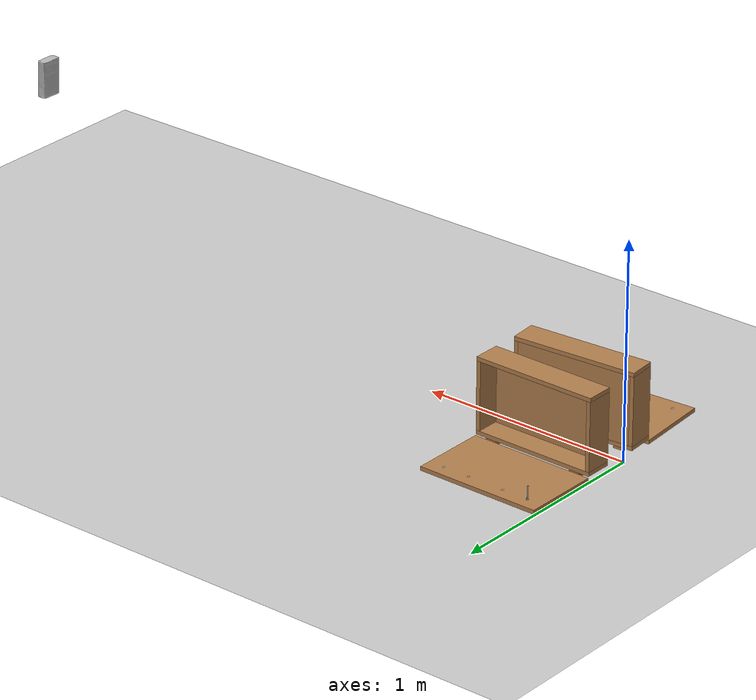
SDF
<sdf version="1.6">
 <world name="default">
  <model name="ground_plane">
   <static>1</static>
   <link name="link">
    <collision name="collision">
     <geometry><plane><normal>0 0 1</normal><size>100 100</size></plane></geometry>
     <surface><friction><ode><mu>100</mu><mu2>50</mu2></ode></friction></surface>
    </collision>
    <visual name="visual">
     <cast_shadows>0</cast_shadows>
     <geometry><plane><normal>0 0 1</normal><size>100 100</size></plane></geometry>
     <material>
      <script><uri>file://media/materials/scripts/gazebo.material</uri><name>Gazebo/Grey</name></script>
     </material>
    </visual>
   </link>
  </model>
  <light name="sun" type="directional">
   <pose>0 0 10 0 -0 0</pose>
   <diffuse>0.8 0.8 0.8 1</diffuse>
   <specular>0.1 0.1 0.1 1</specular>
   <attenuation>
    <range>1000</range>
    <constant>0.9</constant>
    <linear>0.01</linear>
    <quadratic>0.001</quadratic>
   </attenuation>
   <direction>-0.5 0.5 -1</direction>
  </light>
  <plugin name="ros_interface_plugin" filename="librotors_gazebo_ros_interface_plugin.so"/>
  <spherical_coordinates>
   <surface_model>EARTH_WGS84</surface_model>
   <latitude_deg>47.3667</latitude_deg>
   <longitude_deg>8.55</longitude_deg>
   <elevation>500</elevation>
   <heading_deg>0</heading_deg>
  </spherical_coordinates>
  <physics name="default_physics" default="0" type="ode">
   <ode>
    <solver>
     <type>quick</type>
     <iters>1000</iters>
     <sor>1.3</sor>
     <use_dynamic_moi_rescaling>0</use_dynamic_moi_rescaling>
    </solver>
    <constraints>
     <cfm>0</cfm>
     <erp>0.2</erp>
     <contact_max_correcting_vel>100</contact_max_correcting_vel>
     <contact_surface_layer>0.001</contact_surface_layer>
    </constraints>
   </ode>
   <max_step_size>0.01</max_step_size>
   <real_time_factor>1</real_time_factor>
   <real_time_update_rate>100</real_time_update_rate>
  </physics>
  <gravity>0 0 -9.8</gravity>
  <magnetic_field>6e-06 2.3e-05 -4.2e-05</magnetic_field>
  <atmosphere type="adiabatic"/>
  <scene><ambient>0.4 0.4 0.4 1</ambient><background>0.7 0.7 0.7 1</background><shadows>1</shadows></scene>
  <model name="robot">
   <link name="sugar">
    <inertial>
     <pose>-1 0 0 0 -0 0</pose>
     <mass>0.411</mass>
     <inertia><ixx>1</ixx><ixy>0</ixy><ixz>0</ixz><iyy>1</iyy><iyz>0</iyz><izz>1</izz></inertia>
    </inertial>
    <collision name="sugar_collision">
     <pose>-1 0 0 -1.57 0 0</pose>
     <geometry>
      <mesh>
       <scale>1 1 1</scale>
       <uri>/home/skywoodsz/uat/catkin_ws/src/ycb_model/cfg/sugar/texture_map.dae</uri>
      </mesh>
     </geometry>
    </collision>
    <visual name="sugar_visual">
     <pose>-1 0 0 -1.57 0 0</pose>
     <geometry>
      <mesh>
       <scale>1 1 1</scale>
       <uri>/home/skywoodsz/uat/catkin_ws/src/ycb_model/cfg/sugar/texture_map.dae</uri>
      </mesh>
     </geometry>
    </visual>
   </link>
   <pose>4.12944 0.010333 0.878608 -0.007557 -0.011323 -0.025762</pose>
  </model>
  <model name="wooden_case_metal_peg">
   <link name="wooden_case::base">
    <pose>0 0 0.024 0 -0 0</pose>
    <inertial>
     <pose>-0.022184 0 0.171592 0 -0 0</pose>
     <mass>3.96264</mass>
     <inertia>
      <ixx>0.213536</ixx>
      <ixy>0</ixy>
      <ixz>0.000779377</ixz>
      <iyy>0.0708943</iyy>
      <iyz>0</iyz>
      <izz>0.154604</izz>
     </inertia>
    </inertial>
    <collision name="collision_back">
     <pose>-0.053975 0 0.1778 0 -0 0</pose>
     <geometry><box><size>0.01905 0.5461 0.3175</size></box></geometry>
     <surface><contact><ode><max_vel>0.1</max_vel><min_depth>0.001</min_depth></ode></contact></surface>
    </collision>
    <visual name="visual_back">
     <pose>-0.053975 0 0.1778 0 -0 0</pose>
     <geometry><box><size>0.01905 0.5461 0.3175</size></box></geometry>
     <material>
      <script><uri>file://media/materials/scripts/gazebo.material</uri><name>Gazebo/Wood</name></script>
     </material>
    </visual>
    <collision name="collision_bottom">
     <pose>0 0 0.009525 0 -0 0</pose>
     <geometry><box><size>0.127 0.5842 0.01905</size></box></geometry>
     <surface><contact><ode><max_vel>0.1</max_vel><min_depth>0.001</min_depth></ode></contact></surface>
    </collision>
    <visual name="visual_bottom">
     <pose>0 0 0.009525 0 -0 0</pose>
     <geometry><box><size>0.127 0.5842 0.01905</size></box></geometry>
     <material>
      <script><uri>file://media/materials/scripts/gazebo.material</uri><name>Gazebo/Wood</name></script>
     </material>
    </visual>
    <collision name="collision_top">
     <pose>0 0 0.346075 0 -0 0</pose>
     <geometry><box><size>0.127 0.5842 0.01905</size></box></geometry>
     <surface><contact><ode><max_vel>0.1</max_vel><min_depth>0.001</min_depth></ode></contact></surface>
    </collision>
    <visual name="visual_top">
     <pose>0 0 0.346075 0 -0 0</pose>
     <geometry><box><size>0.127 0.5842 0.01905</size></box></geometry>
     <material>
      <script><uri>file://media/materials/scripts/gazebo.material</uri><name>Gazebo/Wood</name></script>
     </material>
    </visual>
    <collision name="collision_left">
     <pose>0 -0.282575 0.1778 0 -0 0</pose>
     <geometry><box><size>0.127 0.01905 0.3175</size></box></geometry>
     <surface><contact><ode><max_vel>0.1</max_vel><min_depth>0.001</min_depth></ode></contact></surface>
    </collision>
    <visual name="visual_left">
     <pose>0 -0.282575 0.1778 0 -0 0</pose>
     <geometry><box><size>0.127 0.01905 0.3175</size></box></geometry>
     <material>
      <script><uri>file://media/materials/scripts/gazebo.material</uri><name>Gazebo/Wood</name></script>
     </material>
    </visual>
    <collision name="collision_right">
     <pose>0 0.282575 0.1778 0 -0 0</pose>
     <geometry><box><size>0.127 0.01905 0.3175</size></box></geometry>
     <surface><contact><ode><max_vel>0.1</max_vel><min_depth>0.001</min_depth></ode></contact></surface>
    </collision>
    <visual name="visual_right">
     <pose>0 0.282575 0.1778 0 -0 0</pose>
     <geometry><box><size>0.127 0.01905 0.3175</size></box></geometry>
     <material>
      <script><uri>file://media/materials/scripts/gazebo.material</uri><name>Gazebo/Wood</name></script>
     </material>
    </visual>
    <collision name="collision_block_left">
     <pose>0.0095 -0.2151 -0.012 0 -0 0</pose>
     <geometry><box><size>0.108 0.05 0.024</size></box></geometry>
     <surface><contact><ode><max_vel>0.1</max_vel><min_depth>0.001</min_depth></ode></contact></surface>
    </collision>
    <visual name="visual_block_left">
     <pose>0.0095 -0.2151 -0.012 0 -0 0</pose>
     <geometry><box><size>0.108 0.05 0.024</size></box></geometry>
     <material>
      <script><uri>file://media/materials/scripts/gazebo.material</uri><name>Gazebo/Wood</name></script>
     </material>
    </visual>
    <collision name="collision_block_right">
     <pose>0.0095 0.2151 -0.012 0 -0 0</pose>
     <geometry><box><size>0.108 0.05 0.024</size></box></geometry>
     <surface><contact><ode><max_vel>0.1</max_vel><min_depth>0.001</min_depth></ode></contact></surface>
    </collision>
    <visual name="visual_block_right">
     <pose>0.0095 0.2151 -0.012 0 -0 0</pose>
     <geometry><box><size>0.108 0.05 0.024</size></box></geometry>
     <material>
      <script><uri>file://media/materials/scripts/gazebo.material</uri><name>Gazebo/Wood</name></script>
     </material>
    </visual>
   </link>
   <link name="wooden_case::lid">
    <pose>0.243775 0 0.009525 0 -0 0</pose>
    <inertial>
     <mass>1.97874</mass>
     <inertia>
      <ixx>0.0563367</ixx>
      <ixy>0</ixy>
      <ixz>0</ixz>
      <iyy>0.020911</iyy>
      <iyz>0</iyz>
      <izz>0.0771281</izz>
     </inertia>
    </inertial>
    <collision name="collision">
     <geometry><box><size>0.3556 0.5842 0.01905</size></box></geometry>
     <surface><contact><ode><max_vel>0.1</max_vel><min_depth>0.001</min_depth></ode></contact></surface>
    </collision>
    <visual name="visual">
     <geometry><box><size>0.3556 0.5842 0.01905</size></box></geometry>
     <material>
      <script><uri>file://media/materials/scripts/gazebo.material</uri><name>Gazebo/Wood</name></script>
     </material>
    </visual>
    <visual name="tee_nut_1">
     <pose>0.122 -0.216 0 0 -0 0</pose>
     <geometry><cylinder><radius>0.00635</radius><length>0.0192405</length></cylinder></geometry>
     <material>
      <script><uri>file://media/materials/scripts/gazebo.material</uri><name>Gazebo/Grey</name></script>
     </material>
    </visual>
    <visual name="tee_nut_2">
     <pose>0.122 -0.088 0 0 -0 0</pose>
     <geometry><cylinder><radius>0.00635</radius><length>0.0192405</length></cylinder></geometry>
     <material>
      <script><uri>file://media/materials/scripts/gazebo.material</uri><name>Gazebo/Grey</name></script>
     </material>
    </visual>
    <visual name="tee_nut_3">
     <pose>0.122 0.088 0 0 -0 0</pose>
     <geometry><cylinder><radius>0.00635</radius><length>0.0192405</length></cylinder></geometry>
     <material>
      <script><uri>file://media/materials/scripts/gazebo.material</uri><name>Gazebo/Grey</name></script>
     </material>
    </visual>
    <visual name="tee_nut_4">
     <pose>0.122 0.216 0 0 -0 0</pose>
     <geometry><cylinder><radius>0.00635</radius><length>0.0192405</length></cylinder></geometry>
     <material>
      <script><uri>file://media/materials/scripts/gazebo.material</uri><name>Gazebo/Grey</name></script>
     </material>
    </visual>
   </link>
   <joint name="wooden_case::lid_hinge" type="revolute">
    <pose>-0.1778 0 0.01905 0 -0 0</pose>
    <parent>wooden_case::base</parent>
    <child>wooden_case::lid</child>
    <axis>
     <xyz>0 1 0</xyz>
     <limit><upper>0.523599</upper><lower>-1.5708</lower></limit>
     <use_parent_model_frame>0</use_parent_model_frame>
     <dynamics><spring_reference>0</spring_reference><spring_stiffness>0</spring_stiffness></dynamics>
    </axis>
   </joint>
   <link name="peg::link">
    <pose>0.365774 0.216 0.05005 0 -0 0</pose>
    <inertial>
     <mass>0.0121</mass>
     <inertia>
      <ixx>3.90898e-06</ixx>
      <ixy>0</ixy>
      <ixz>0</ixz>
      <iyy>3.90898e-06</iyy>
      <iyz>0</iyz>
      <izz>6.58845e-08</izz>
     </inertia>
    </inertial>
    <collision name="collision">
     <geometry><cylinder><radius>0.0033</radius><length>0.062</length></cylinder></geometry>
    </collision>
    <visual name="visual">
     <geometry><cylinder><radius>0.0033</radius><length>0.062</length></cylinder></geometry>
     <material>
      <script><uri>file://media/materials/scripts/gazebo.material</uri><name>Gazebo/Grey</name></script>
     </material>
    </visual>
   </link>
   <joint name="case_peg" type="revolute">
    <child>peg::link</child>
    <parent>wooden_case::lid</parent>
    <axis>
     <xyz>0 0 1</xyz>
     <limit><upper>0</upper><lower>0</lower></limit>
     <use_parent_model_frame>0</use_parent_model_frame>
     <dynamics><spring_reference>0</spring_reference><spring_stiffness>0</spring_stiffness></dynamics>
    </axis>
   </joint>
   <pose>0.299019 0.160395 -0.000207 -0.000947 0.000572 1.56432</pose>
  </model>
  <model name="wooden_case_metal_peg_0">
   <link name="wooden_case::base">
    <pose>0 0 0.024 0 -0 0</pose>
    <inertial>
     <pose>-0.022184 0 0.171592 0 -0 0</pose>
     <mass>3.96264</mass>
     <inertia>
      <ixx>0.213536</ixx>
      <ixy>0</ixy>
      <ixz>0.000779377</ixz>
      <iyy>0.0708943</iyy>
      <iyz>0</iyz>
      <izz>0.154604</izz>
     </inertia>
    </inertial>
    <collision name="collision_back">
     <pose>-0.053975 0 0.1778 0 -0 0</pose>
     <geometry><box><size>0.01905 0.5461 0.3175</size></box></geometry>
     <surface><contact><ode><max_vel>0.1</max_vel><min_depth>0.001</min_depth></ode></contact></surface>
    </collision>
    <visual name="visual_back">
     <pose>-0.053975 0 0.1778 0 -0 0</pose>
     <geometry><box><size>0.01905 0.5461 0.3175</size></box></geometry>
     <material>
      <script><uri>file://media/materials/scripts/gazebo.material</uri><name>Gazebo/Wood</name></script>
     </material>
    </visual>
    <collision name="collision_bottom">
     <pose>0 0 0.009525 0 -0 0</pose>
     <geometry><box><size>0.127 0.5842 0.01905</size></box></geometry>
     <surface><contact><ode><max_vel>0.1</max_vel><min_depth>0.001</min_depth></ode></contact></surface>
    </collision>
    <visual name="visual_bottom">
     <pose>0 0 0.009525 0 -0 0</pose>
     <geometry><box><size>0.127 0.5842 0.01905</size></box></geometry>
     <material>
      <script><uri>file://media/materials/scripts/gazebo.material</uri><name>Gazebo/Wood</name></script>
     </material>
    </visual>
    <collision name="collision_top">
     <pose>0 0 0.346075 0 -0 0</pose>
     <geometry><box><size>0.127 0.5842 0.01905</size></box></geometry>
     <surface><contact><ode><max_vel>0.1</max_vel><min_depth>0.001</min_depth></ode></contact></surface>
    </collision>
    <visual name="visual_top">
     <pose>0 0 0.346075 0 -0 0</pose>
     <geometry><box><size>0.127 0.5842 0.01905</size></box></geometry>
     <material>
      <script><uri>file://media/materials/scripts/gazebo.material</uri><name>Gazebo/Wood</name></script>
     </material>
    </visual>
    <collision name="collision_left">
     <pose>0 -0.282575 0.1778 0 -0 0</pose>
     <geometry><box><size>0.127 0.01905 0.3175</size></box></geometry>
     <surface><contact><ode><max_vel>0.1</max_vel><min_depth>0.001</min_depth></ode></contact></surface>
    </collision>
    <visual name="visual_left">
     <pose>0 -0.282575 0.1778 0 -0 0</pose>
     <geometry><box><size>0.127 0.01905 0.3175</size></box></geometry>
     <material>
      <script><uri>file://media/materials/scripts/gazebo.material</uri><name>Gazebo/Wood</name></script>
     </material>
    </visual>
    <collision name="collision_right">
     <pose>0 0.282575 0.1778 0 -0 0</pose>
     <geometry><box><size>0.127 0.01905 0.3175</size></box></geometry>
     <surface><contact><ode><max_vel>0.1</max_vel><min_depth>0.001</min_depth></ode></contact></surface>
    </collision>
    <visual name="visual_right">
     <pose>0 0.282575 0.1778 0 -0 0</pose>
     <geometry><box><size>0.127 0.01905 0.3175</size></box></geometry>
     <material>
      <script><uri>file://media/materials/scripts/gazebo.material</uri><name>Gazebo/Wood</name></script>
     </material>
    </visual>
    <collision name="collision_block_left">
     <pose>0.0095 -0.2151 -0.012 0 -0 0</pose>
     <geometry><box><size>0.108 0.05 0.024</size></box></geometry>
     <surface><contact><ode><max_vel>0.1</max_vel><min_depth>0.001</min_depth></ode></contact></surface>
    </collision>
    <visual name="visual_block_left">
     <pose>0.0095 -0.2151 -0.012 0 -0 0</pose>
     <geometry><box><size>0.108 0.05 0.024</size></box></geometry>
     <material>
      <script><uri>file://media/materials/scripts/gazebo.material</uri><name>Gazebo/Wood</name></script>
     </material>
    </visual>
    <collision name="collision_block_right">
     <pose>0.0095 0.2151 -0.012 0 -0 0</pose>
     <geometry><box><size>0.108 0.05 0.024</size></box></geometry>
     <surface><contact><ode><max_vel>0.1</max_vel><min_depth>0.001</min_depth></ode></contact></surface>
    </collision>
    <visual name="visual_block_right">
     <pose>0.0095 0.2151 -0.012 0 -0 0</pose>
     <geometry><box><size>0.108 0.05 0.024</size></box></geometry>
     <material>
      <script><uri>file://media/materials/scripts/gazebo.material</uri><name>Gazebo/Wood</name></script>
     </material>
    </visual>
   </link>
   <link name="wooden_case::lid">
    <pose>0.243775 0 0.009525 0 -0 0</pose>
    <inertial>
     <mass>1.97874</mass>
     <inertia>
      <ixx>0.0563367</ixx>
      <ixy>0</ixy>
      <ixz>0</ixz>
      <iyy>0.020911</iyy>
      <iyz>0</iyz>
      <izz>0.0771281</izz>
     </inertia>
    </inertial>
    <collision name="collision">
     <geometry><box><size>0.3556 0.5842 0.01905</size></box></geometry>
     <surface><contact><ode><max_vel>0.1</max_vel><min_depth>0.001</min_depth></ode></contact></surface>
    </collision>
    <visual name="visual">
     <geometry><box><size>0.3556 0.5842 0.01905</size></box></geometry>
     <material>
      <script><uri>file://media/materials/scripts/gazebo.material</uri><name>Gazebo/Wood</name></script>
     </material>
    </visual>
    <visual name="tee_nut_1">
     <pose>0.122 -0.216 0 0 -0 0</pose>
     <geometry><cylinder><radius>0.00635</radius><length>0.0192405</length></cylinder></geometry>
     <material>
      <script><uri>file://media/materials/scripts/gazebo.material</uri><name>Gazebo/Grey</name></script>
     </material>
    </visual>
    <visual name="tee_nut_2">
     <pose>0.122 -0.088 0 0 -0 0</pose>
     <geometry><cylinder><radius>0.00635</radius><length>0.0192405</length></cylinder></geometry>
     <material>
      <script><uri>file://media/materials/scripts/gazebo.material</uri><name>Gazebo/Grey</name></script>
     </material>
    </visual>
    <visual name="tee_nut_3">
     <pose>0.122 0.088 0 0 -0 0</pose>
     <geometry><cylinder><radius>0.00635</radius><length>0.0192405</length></cylinder></geometry>
     <material>
      <script><uri>file://media/materials/scripts/gazebo.material</uri><name>Gazebo/Grey</name></script>
     </material>
    </visual>
    <visual name="tee_nut_4">
     <pose>0.122 0.216 0 0 -0 0</pose>
     <geometry><cylinder><radius>0.00635</radius><length>0.0192405</length></cylinder></geometry>
     <material>
      <script><uri>file://media/materials/scripts/gazebo.material</uri><name>Gazebo/Grey</name></script>
     </material>
    </visual>
   </link>
   <joint name="wooden_case::lid_hinge" type="revolute">
    <pose>-0.1778 0 0.01905 0 -0 0</pose>
    <parent>wooden_case::base</parent>
    <child>wooden_case::lid</child>
    <axis>
     <xyz>0 1 0</xyz>
     <limit><upper>0.523599</upper><lower>-1.5708</lower></limit>
     <use_parent_model_frame>0</use_parent_model_frame>
     <dynamics><spring_reference>0</spring_reference><spring_stiffness>0</spring_stiffness></dynamics>
    </axis>
   </joint>
   <link name="peg::link">
    <pose>0.365774 0.216 0.05005 0 -0 0</pose>
    <inertial>
     <mass>0.0121</mass>
     <inertia>
      <ixx>3.90898e-06</ixx>
      <ixy>0</ixy>
      <ixz>0</ixz>
      <iyy>3.90898e-06</iyy>
      <iyz>0</iyz>
      <izz>6.58845e-08</izz>
     </inertia>
    </inertial>
    <collision name="collision">
     <geometry><cylinder><radius>0.0033</radius><length>0.062</length></cylinder></geometry>
    </collision>
    <visual name="visual">
     <geometry><cylinder><radius>0.0033</radius><length>0.062</length></cylinder></geometry>
     <material>
      <script><uri>file://media/materials/scripts/gazebo.material</uri><name>Gazebo/Grey</name></script>
     </material>
    </visual>
   </link>
   <joint name="case_peg" type="revolute">
    <child>peg::link</child>
    <parent>wooden_case::lid</parent>
    <axis>
     <xyz>0 0 1</xyz>
     <limit><upper>0</upper><lower>0</lower></limit>
     <use_parent_model_frame>0</use_parent_model_frame>
     <dynamics><spring_reference>0</spring_reference><spring_stiffness>0</spring_stiffness></dynamics>
    </axis>
   </joint>
   <pose>0.302 -0.107994 -0.000178 -0.000293 -0.00133 -1.49959</pose>
  </model>
 </world>
</sdf>
